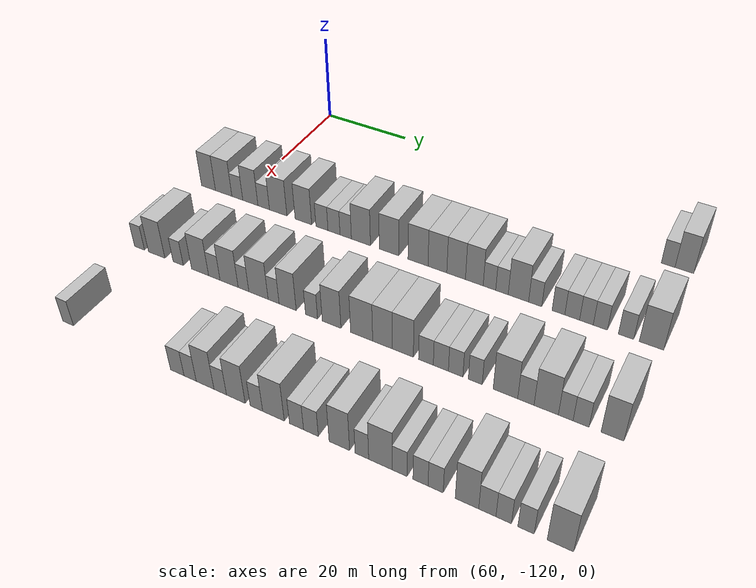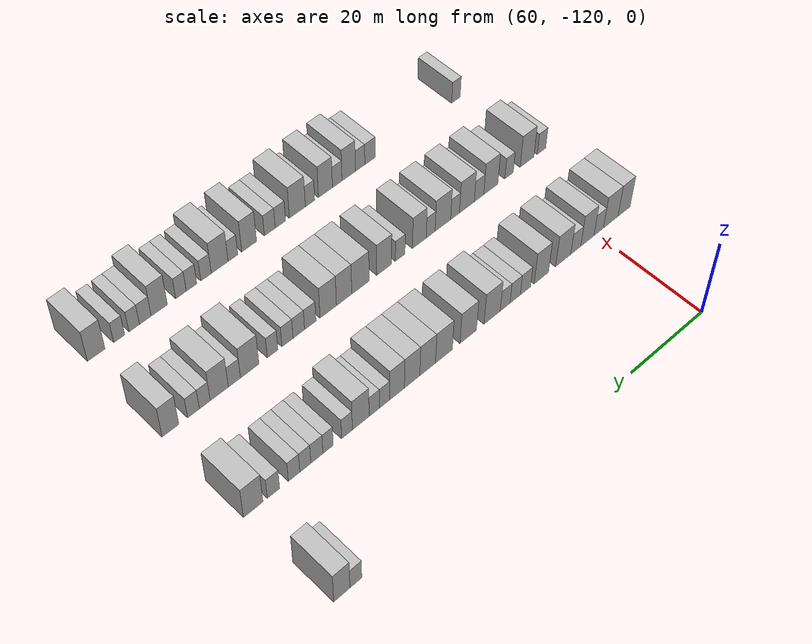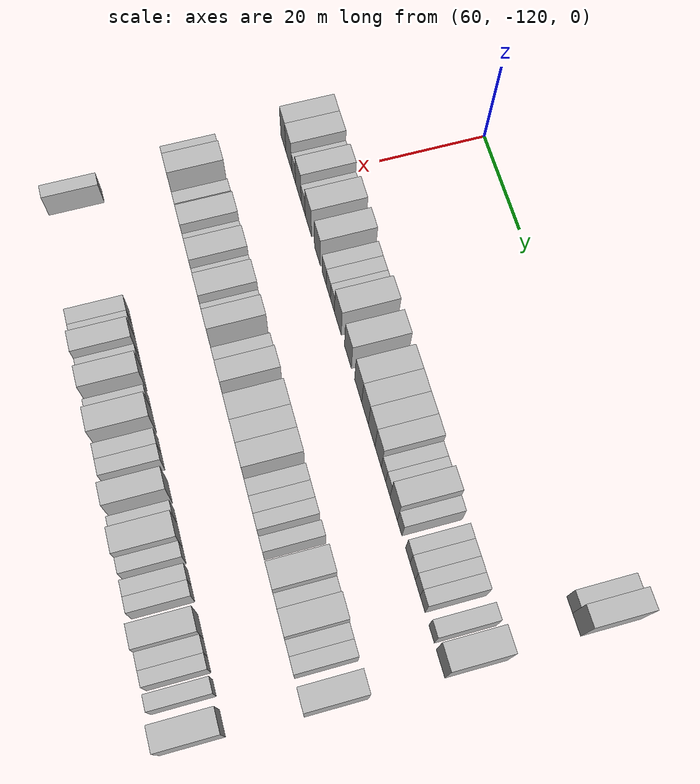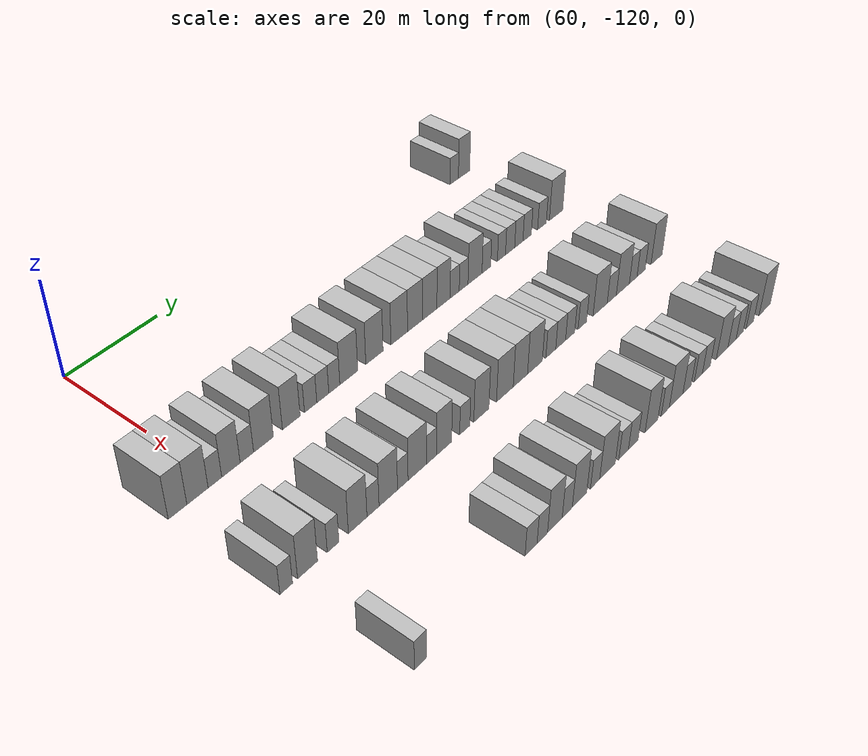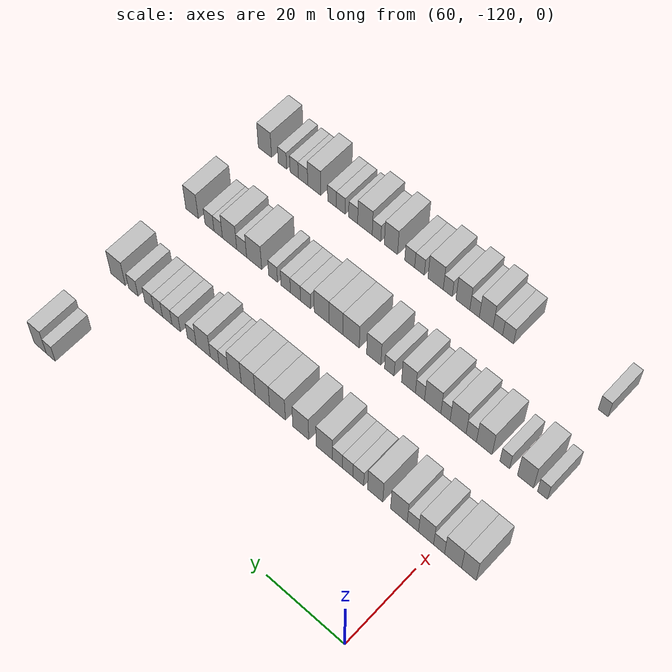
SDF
<sdf version="1.6">
 <world name="default">
  <model name="building_455">
   <static>1</static>
   <pose>69.0000 -35.5100 0 0.000000 0.000000 0.000000</pose>
   <link name="link">
    <pose>0 0 3.00 0 0 0</pose>
    <collision name="collision"><geometry><box><size>10.0000 2.6755 6.0000</size></box></geometry></collision>
    <visual name="visual">
     <cast_shadows>0</cast_shadows>
     <geometry><box><size>10.0000 2.6755 6.0000</size></box></geometry>
     <material>
      <script>
       <uri>model://HANNAS_wall/materials/scripts</uri>
       <uri>model://HANNAS_wall/materials/textures</uri>
       <name>vrc/HANNAS_wall</name>
      </script>
     </material>
    </visual>
   </link>
  </model>
  <model name="building_456">
   <static>1</static>
   <pose>69.0000 -32.3683 0 0.000000 0.000000 0.000000</pose>
   <link name="link">
    <pose>0 0 4.50 0 0 0</pose>
    <collision name="collision"><geometry><box><size>10.0000 3.6080 9.0000</size></box></geometry></collision>
    <visual name="visual">
     <cast_shadows>0</cast_shadows>
     <geometry><box><size>10.0000 3.6080 9.0000</size></box></geometry>
     <material>
      <script>
       <uri>model://HANNAS_wall/materials/scripts</uri>
       <uri>model://HANNAS_wall/materials/textures</uri>
       <name>vrc/HANNAS_wall</name>
      </script>
     </material>
    </visual>
   </link>
  </model>
  <model name="building_611">
   <static>1</static>
   <pose>91.0000 -128.0939 0 0.000000 0.000000 0.000000</pose>
   <link name="link">
    <pose>0 0 4.50 0 0 0</pose>
    <collision name="collision"><geometry><box><size>10.0000 3.6409 9.0000</size></box></geometry></collision>
    <visual name="visual">
     <cast_shadows>0</cast_shadows>
     <geometry><box><size>10.0000 3.6409 9.0000</size></box></geometry>
     <material>
      <script>
       <uri>model://HANNAS_wall/materials/scripts</uri>
       <uri>model://HANNAS_wall/materials/textures</uri>
       <name>vrc/HANNAS_wall</name>
      </script>
     </material>
    </visual>
   </link>
  </model>
  <model name="building_612">
   <static>1</static>
   <pose>91.0000 -124.1484 0 0.000000 0.000000 0.000000</pose>
   <link name="link">
    <pose>0 0 4.50 0 0 0</pose>
    <collision name="collision"><geometry><box><size>10.0000 4.2502 9.0000</size></box></geometry></collision>
    <visual name="visual">
     <cast_shadows>0</cast_shadows>
     <geometry><box><size>10.0000 4.2502 9.0000</size></box></geometry>
     <material>
      <script>
       <uri>model://HANNAS_wall/materials/scripts</uri>
       <uri>model://HANNAS_wall/materials/textures</uri>
       <name>vrc/HANNAS_wall</name>
      </script>
     </material>
    </visual>
   </link>
  </model>
  <model name="building_613">
   <static>1</static>
   <pose>91.0000 -120.6367 0 0.000000 0.000000 0.000000</pose>
   <link name="link">
    <pose>0 0 3.00 0 0 0</pose>
    <collision name="collision"><geometry><box><size>10.0000 2.7732 6.0000</size></box></geometry></collision>
    <visual name="visual">
     <cast_shadows>0</cast_shadows>
     <geometry><box><size>10.0000 2.7732 6.0000</size></box></geometry>
     <material>
      <script>
       <uri>model://HANNAS_wall/materials/scripts</uri>
       <uri>model://HANNAS_wall/materials/textures</uri>
       <name>vrc/HANNAS_wall</name>
      </script>
     </material>
    </visual>
   </link>
  </model>
  <model name="building_614">
   <static>1</static>
   <pose>91.0000 -117.3344 0 0.000000 0.000000 0.000000</pose>
   <link name="link">
    <pose>0 0 4.50 0 0 0</pose>
    <collision name="collision"><geometry><box><size>10.0000 3.8313 9.0000</size></box></geometry></collision>
    <visual name="visual">
     <cast_shadows>0</cast_shadows>
     <geometry><box><size>10.0000 3.8313 9.0000</size></box></geometry>
     <material>
      <script>
       <uri>model://HANNAS_wall/materials/scripts</uri>
       <uri>model://HANNAS_wall/materials/textures</uri>
       <name>vrc/HANNAS_wall</name>
      </script>
     </material>
    </visual>
   </link>
  </model>
  <model name="building_615">
   <static>1</static>
   <pose>91.0000 -113.9840 0 0.000000 0.000000 0.000000</pose>
   <link name="link">
    <pose>0 0 3.00 0 0 0</pose>
    <collision name="collision"><geometry><box><size>10.0000 2.8696 6.0000</size></box></geometry></collision>
    <visual name="visual">
     <cast_shadows>0</cast_shadows>
     <geometry><box><size>10.0000 2.8696 6.0000</size></box></geometry>
     <material>
      <script>
       <uri>model://HANNAS_wall/materials/scripts</uri>
       <uri>model://HANNAS_wall/materials/textures</uri>
       <name>vrc/HANNAS_wall</name>
      </script>
     </material>
    </visual>
   </link>
  </model>
  <model name="building_616">
   <static>1</static>
   <pose>91.0000 -110.4064 0 0.000000 0.000000 0.000000</pose>
   <link name="link">
    <pose>0 0 4.50 0 0 0</pose>
    <collision name="collision"><geometry><box><size>10.0000 4.2856 9.0000</size></box></geometry></collision>
    <visual name="visual">
     <cast_shadows>0</cast_shadows>
     <geometry><box><size>10.0000 4.2856 9.0000</size></box></geometry>
     <material>
      <script>
       <uri>model://HANNAS_wall/materials/scripts</uri>
       <uri>model://HANNAS_wall/materials/textures</uri>
       <name>vrc/HANNAS_wall</name>
      </script>
     </material>
    </visual>
   </link>
  </model>
  <model name="building_617">
   <static>1</static>
   <pose>91.0000 -104.2760 0 0.000000 0.000000 0.000000</pose>
   <link name="link">
    <pose>0 0 4.50 0 0 0</pose>
    <collision name="collision"><geometry><box><size>10.0000 3.9752 9.0000</size></box></geometry></collision>
    <visual name="visual">
     <cast_shadows>0</cast_shadows>
     <geometry><box><size>10.0000 3.9752 9.0000</size></box></geometry>
     <material>
      <script>
       <uri>model://HANNAS_wall/materials/scripts</uri>
       <uri>model://HANNAS_wall/materials/textures</uri>
       <name>vrc/HANNAS_wall</name>
      </script>
     </material>
    </visual>
   </link>
  </model>
  <model name="building_618">
   <static>1</static>
   <pose>91.0000 -99.8655 0 0.000000 0.000000 0.000000</pose>
   <link name="link">
    <pose>0 0 3.00 0 0 0</pose>
    <collision name="collision"><geometry><box><size>10.0000 2.8457 6.0000</size></box></geometry></collision>
    <visual name="visual">
     <cast_shadows>0</cast_shadows>
     <geometry><box><size>10.0000 2.8457 6.0000</size></box></geometry>
     <material>
      <script>
       <uri>model://HANNAS_wall/materials/scripts</uri>
       <uri>model://HANNAS_wall/materials/textures</uri>
       <name>vrc/HANNAS_wall</name>
      </script>
     </material>
    </visual>
   </link>
  </model>
  <model name="building_619">
   <static>1</static>
   <pose>91.0000 -97.0389 0 0.000000 0.000000 0.000000</pose>
   <link name="link">
    <pose>0 0 3.00 0 0 0</pose>
    <collision name="collision"><geometry><box><size>10.0000 2.8075 6.0000</size></box></geometry></collision>
    <visual name="visual">
     <cast_shadows>0</cast_shadows>
     <geometry><box><size>10.0000 2.8075 6.0000</size></box></geometry>
     <material>
      <script>
       <uri>model://HANNAS_wall/materials/scripts</uri>
       <uri>model://HANNAS_wall/materials/textures</uri>
       <name>vrc/HANNAS_wall</name>
      </script>
     </material>
    </visual>
   </link>
  </model>
  <model name="building_620">
   <static>1</static>
   <pose>91.0000 -94.3186 0 0.000000 0.000000 0.000000</pose>
   <link name="link">
    <pose>0 0 3.00 0 0 0</pose>
    <collision name="collision"><geometry><box><size>10.0000 2.6333 6.0000</size></box></geometry></collision>
    <visual name="visual">
     <cast_shadows>0</cast_shadows>
     <geometry><box><size>10.0000 2.6333 6.0000</size></box></geometry>
     <material>
      <script>
       <uri>model://HANNAS_wall/materials/scripts</uri>
       <uri>model://HANNAS_wall/materials/textures</uri>
       <name>vrc/HANNAS_wall</name>
      </script>
     </material>
    </visual>
   </link>
  </model>
  <model name="building_621">
   <static>1</static>
   <pose>91.0000 -90.8335 0 0.000000 0.000000 0.000000</pose>
   <link name="link">
    <pose>0 0 4.50 0 0 0</pose>
    <collision name="collision"><geometry><box><size>10.0000 4.3370 9.0000</size></box></geometry></collision>
    <visual name="visual">
     <cast_shadows>0</cast_shadows>
     <geometry><box><size>10.0000 4.3370 9.0000</size></box></geometry>
     <material>
      <script>
       <uri>model://HANNAS_wall/materials/scripts</uri>
       <uri>model://HANNAS_wall/materials/textures</uri>
       <name>vrc/HANNAS_wall</name>
      </script>
     </material>
    </visual>
   </link>
  </model>
  <model name="building_622">
   <static>1</static>
   <pose>91.0000 -84.4965 0 0.000000 0.000000 0.000000</pose>
   <link name="link">
    <pose>0 0 4.50 0 0 0</pose>
    <collision name="collision"><geometry><box><size>10.0000 4.3370 9.0000</size></box></geometry></collision>
    <visual name="visual">
     <cast_shadows>0</cast_shadows>
     <geometry><box><size>10.0000 4.3370 9.0000</size></box></geometry>
     <material>
      <script>
       <uri>model://HANNAS_wall/materials/scripts</uri>
       <uri>model://HANNAS_wall/materials/textures</uri>
       <name>vrc/HANNAS_wall</name>
      </script>
     </material>
    </visual>
   </link>
  </model>
  <model name="building_623">
   <static>1</static>
   <pose>91.0000 -78.1576 0 0.000000 0.000000 0.000000</pose>
   <link name="link">
    <pose>0 0 4.50 0 0 0</pose>
    <collision name="collision"><geometry><box><size>10.0000 4.3409 9.0000</size></box></geometry></collision>
    <visual name="visual">
     <cast_shadows>0</cast_shadows>
     <geometry><box><size>10.0000 4.3409 9.0000</size></box></geometry>
     <material>
      <script>
       <uri>model://HANNAS_wall/materials/scripts</uri>
       <uri>model://HANNAS_wall/materials/textures</uri>
       <name>vrc/HANNAS_wall</name>
      </script>
     </material>
    </visual>
   </link>
  </model>
  <model name="building_624">
   <static>1</static>
   <pose>91.0000 -73.9872 0 0.000000 0.000000 0.000000</pose>
   <link name="link">
    <pose>0 0 4.50 0 0 0</pose>
    <collision name="collision"><geometry><box><size>10.0000 3.9998 9.0000</size></box></geometry></collision>
    <visual name="visual">
     <cast_shadows>0</cast_shadows>
     <geometry><box><size>10.0000 3.9998 9.0000</size></box></geometry>
     <material>
      <script>
       <uri>model://HANNAS_wall/materials/scripts</uri>
       <uri>model://HANNAS_wall/materials/textures</uri>
       <name>vrc/HANNAS_wall</name>
      </script>
     </material>
    </visual>
   </link>
  </model>
  <model name="building_625">
   <static>1</static>
   <pose>91.0000 -70.0371 0 0.000000 0.000000 0.000000</pose>
   <link name="link">
    <pose>0 0 4.50 0 0 0</pose>
    <collision name="collision"><geometry><box><size>10.0000 3.9005 9.0000</size></box></geometry></collision>
    <visual name="visual">
     <cast_shadows>0</cast_shadows>
     <geometry><box><size>10.0000 3.9005 9.0000</size></box></geometry>
     <material>
      <script>
       <uri>model://HANNAS_wall/materials/scripts</uri>
       <uri>model://HANNAS_wall/materials/textures</uri>
       <name>vrc/HANNAS_wall</name>
      </script>
     </material>
    </visual>
   </link>
  </model>
  <model name="building_626">
   <static>1</static>
   <pose>91.0000 -66.2561 0 0.000000 0.000000 0.000000</pose>
   <link name="link">
    <pose>0 0 4.50 0 0 0</pose>
    <collision name="collision"><geometry><box><size>10.0000 3.6615 9.0000</size></box></geometry></collision>
    <visual name="visual">
     <cast_shadows>0</cast_shadows>
     <geometry><box><size>10.0000 3.6615 9.0000</size></box></geometry>
     <material>
      <script>
       <uri>model://HANNAS_wall/materials/scripts</uri>
       <uri>model://HANNAS_wall/materials/textures</uri>
       <name>vrc/HANNAS_wall</name>
      </script>
     </material>
    </visual>
   </link>
  </model>
  <model name="building_627">
   <static>1</static>
   <pose>91.0000 -63.1468 0 0.000000 0.000000 0.000000</pose>
   <link name="link">
    <pose>0 0 3.00 0 0 0</pose>
    <collision name="collision"><geometry><box><size>10.0000 2.5570 6.0000</size></box></geometry></collision>
    <visual name="visual">
     <cast_shadows>0</cast_shadows>
     <geometry><box><size>10.0000 2.5570 6.0000</size></box></geometry>
     <material>
      <script>
       <uri>model://HANNAS_wall/materials/scripts</uri>
       <uri>model://HANNAS_wall/materials/textures</uri>
       <name>vrc/HANNAS_wall</name>
      </script>
     </material>
    </visual>
   </link>
  </model>
  <model name="building_628">
   <static>1</static>
   <pose>91.0000 -60.6118 0 0.000000 0.000000 0.000000</pose>
   <link name="link">
    <pose>0 0 3.00 0 0 0</pose>
    <collision name="collision"><geometry><box><size>10.0000 2.5129 6.0000</size></box></geometry></collision>
    <visual name="visual">
     <cast_shadows>0</cast_shadows>
     <geometry><box><size>10.0000 2.5129 6.0000</size></box></geometry>
     <material>
      <script>
       <uri>model://HANNAS_wall/materials/scripts</uri>
       <uri>model://HANNAS_wall/materials/textures</uri>
       <name>vrc/HANNAS_wall</name>
      </script>
     </material>
    </visual>
   </link>
  </model>
  <model name="building_629">
   <static>1</static>
   <pose>91.0000 -57.3261 0 0.000000 0.000000 0.000000</pose>
   <link name="link">
    <pose>0 0 4.50 0 0 0</pose>
    <collision name="collision"><geometry><box><size>10.0000 4.0585 9.0000</size></box></geometry></collision>
    <visual name="visual">
     <cast_shadows>0</cast_shadows>
     <geometry><box><size>10.0000 4.0585 9.0000</size></box></geometry>
     <material>
      <script>
       <uri>model://HANNAS_wall/materials/scripts</uri>
       <uri>model://HANNAS_wall/materials/textures</uri>
       <name>vrc/HANNAS_wall</name>
      </script>
     </material>
    </visual>
   </link>
  </model>
  <model name="building_630">
   <static>1</static>
   <pose>91.0000 -54.0108 0 0.000000 0.000000 0.000000</pose>
   <link name="link">
    <pose>0 0 3.00 0 0 0</pose>
    <collision name="collision"><geometry><box><size>10.0000 2.5720 6.0000</size></box></geometry></collision>
    <visual name="visual">
     <cast_shadows>0</cast_shadows>
     <geometry><box><size>10.0000 2.5720 6.0000</size></box></geometry>
     <material>
      <script>
       <uri>model://HANNAS_wall/materials/scripts</uri>
       <uri>model://HANNAS_wall/materials/textures</uri>
       <name>vrc/HANNAS_wall</name>
      </script>
     </material>
    </visual>
   </link>
  </model>
  <model name="building_631">
   <static>1</static>
   <pose>91.0000 -49.4998 0 0.000000 0.000000 0.000000</pose>
   <link name="link">
    <pose>0 0 3.00 0 0 0</pose>
    <collision name="collision"><geometry><box><size>10.0000 2.4500 6.0000</size></box></geometry></collision>
    <visual name="visual">
     <cast_shadows>0</cast_shadows>
     <geometry><box><size>10.0000 2.4500 6.0000</size></box></geometry>
     <material>
      <script>
       <uri>model://HANNAS_wall/materials/scripts</uri>
       <uri>model://HANNAS_wall/materials/textures</uri>
       <name>vrc/HANNAS_wall</name>
      </script>
     </material>
    </visual>
   </link>
  </model>
  <model name="building_632">
   <static>1</static>
   <pose>91.0000 -46.8689 0 0.000000 0.000000 0.000000</pose>
   <link name="link">
    <pose>0 0 3.00 0 0 0</pose>
    <collision name="collision"><geometry><box><size>10.0000 2.8118 6.0000</size></box></geometry></collision>
    <visual name="visual">
     <cast_shadows>0</cast_shadows>
     <geometry><box><size>10.0000 2.8118 6.0000</size></box></geometry>
     <material>
      <script>
       <uri>model://HANNAS_wall/materials/scripts</uri>
       <uri>model://HANNAS_wall/materials/textures</uri>
       <name>vrc/HANNAS_wall</name>
      </script>
     </material>
    </visual>
   </link>
  </model>
  <model name="building_633">
   <static>1</static>
   <pose>91.0000 -44.1807 0 0.000000 0.000000 0.000000</pose>
   <link name="link">
    <pose>0 0 3.00 0 0 0</pose>
    <collision name="collision"><geometry><box><size>10.0000 2.5646 6.0000</size></box></geometry></collision>
    <visual name="visual">
     <cast_shadows>0</cast_shadows>
     <geometry><box><size>10.0000 2.5646 6.0000</size></box></geometry>
     <material>
      <script>
       <uri>model://HANNAS_wall/materials/scripts</uri>
       <uri>model://HANNAS_wall/materials/textures</uri>
       <name>vrc/HANNAS_wall</name>
      </script>
     </material>
    </visual>
   </link>
  </model>
  <model name="building_634">
   <static>1</static>
   <pose>91.0000 -41.5768 0 0.000000 0.000000 0.000000</pose>
   <link name="link">
    <pose>0 0 3.00 0 0 0</pose>
    <collision name="collision"><geometry><box><size>10.0000 2.6433 6.0000</size></box></geometry></collision>
    <visual name="visual">
     <cast_shadows>0</cast_shadows>
     <geometry><box><size>10.0000 2.6433 6.0000</size></box></geometry>
     <material>
      <script>
       <uri>model://HANNAS_wall/materials/scripts</uri>
       <uri>model://HANNAS_wall/materials/textures</uri>
       <name>vrc/HANNAS_wall</name>
      </script>
     </material>
    </visual>
   </link>
  </model>
  <model name="building_635">
   <static>1</static>
   <pose>91.0000 -36.8577 0 0.000000 0.000000 0.000000</pose>
   <link name="link">
    <pose>0 0 3.00 0 0 0</pose>
    <collision name="collision"><geometry><box><size>10.0000 2.7949 6.0000</size></box></geometry></collision>
    <visual name="visual">
     <cast_shadows>0</cast_shadows>
     <geometry><box><size>10.0000 2.7949 6.0000</size></box></geometry>
     <material>
      <script>
       <uri>model://HANNAS_wall/materials/scripts</uri>
       <uri>model://HANNAS_wall/materials/textures</uri>
       <name>vrc/HANNAS_wall</name>
      </script>
     </material>
    </visual>
   </link>
  </model>
  <model name="building_636">
   <static>1</static>
   <pose>91.0000 -32.2760 0 0.000000 0.000000 0.000000</pose>
   <link name="link">
    <pose>0 0 4.50 0 0 0</pose>
    <collision name="collision"><geometry><box><size>10.0000 4.3685 9.0000</size></box></geometry></collision>
    <visual name="visual">
     <cast_shadows>0</cast_shadows>
     <geometry><box><size>10.0000 4.3685 9.0000</size></box></geometry>
     <material>
      <script>
       <uri>model://HANNAS_wall/materials/scripts</uri>
       <uri>model://HANNAS_wall/materials/textures</uri>
       <name>vrc/HANNAS_wall</name>
      </script>
     </material>
    </visual>
   </link>
  </model>
  <model name="building_800">
   <static>1</static>
   <pose>113.0000 -128.1804 0 0.000000 0.000000 0.000000</pose>
   <link name="link">
    <pose>0 0 3.00 0 0 0</pose>
    <collision name="collision"><geometry><box><size>10.0000 2.4949 6.0000</size></box></geometry></collision>
    <visual name="visual">
     <cast_shadows>0</cast_shadows>
     <geometry><box><size>10.0000 2.4949 6.0000</size></box></geometry>
     <material>
      <script>
       <uri>model://HANNAS_wall/materials/scripts</uri>
       <uri>model://HANNAS_wall/materials/textures</uri>
       <name>vrc/HANNAS_wall</name>
      </script>
     </material>
    </visual>
   </link>
  </model>
  <model name="building_801">
   <static>1</static>
   <pose>113.0000 -123.9115 0 0.000000 0.000000 0.000000</pose>
   <link name="link">
    <pose>0 0 4.50 0 0 0</pose>
    <collision name="collision"><geometry><box><size>10.0000 4.0429 9.0000</size></box></geometry></collision>
    <visual name="visual">
     <cast_shadows>0</cast_shadows>
     <geometry><box><size>10.0000 4.0429 9.0000</size></box></geometry>
     <material>
      <script>
       <uri>model://HANNAS_wall/materials/scripts</uri>
       <uri>model://HANNAS_wall/materials/textures</uri>
       <name>vrc/HANNAS_wall</name>
      </script>
     </material>
    </visual>
   </link>
  </model>
  <model name="building_802">
   <static>1</static>
   <pose>113.0000 -118.6640 0 0.000000 0.000000 0.000000</pose>
   <link name="link">
    <pose>0 0 3.00 0 0 0</pose>
    <collision name="collision"><geometry><box><size>10.0000 2.4520 6.0000</size></box></geometry></collision>
    <visual name="visual">
     <cast_shadows>0</cast_shadows>
     <geometry><box><size>10.0000 2.4520 6.0000</size></box></geometry>
     <material>
      <script>
       <uri>model://HANNAS_wall/materials/scripts</uri>
       <uri>model://HANNAS_wall/materials/textures</uri>
       <name>vrc/HANNAS_wall</name>
      </script>
     </material>
    </visual>
   </link>
  </model>
  <model name="building_803">
   <static>1</static>
   <pose>113.0000 -113.4233 0 0.000000 0.000000 0.000000</pose>
   <link name="link">
    <pose>0 0 4.50 0 0 0</pose>
    <collision name="collision"><geometry><box><size>10.0000 4.0296 9.0000</size></box></geometry></collision>
    <visual name="visual">
     <cast_shadows>0</cast_shadows>
     <geometry><box><size>10.0000 4.0296 9.0000</size></box></geometry>
     <material>
      <script>
       <uri>model://HANNAS_wall/materials/scripts</uri>
       <uri>model://HANNAS_wall/materials/textures</uri>
       <name>vrc/HANNAS_wall</name>
      </script>
     </material>
    </visual>
   </link>
  </model>
  <model name="building_804">
   <static>1</static>
   <pose>113.0000 -110.0746 0 0.000000 0.000000 0.000000</pose>
   <link name="link">
    <pose>0 0 3.00 0 0 0</pose>
    <collision name="collision"><geometry><box><size>10.0000 2.6677 6.0000</size></box></geometry></collision>
    <visual name="visual">
     <cast_shadows>0</cast_shadows>
     <geometry><box><size>10.0000 2.6677 6.0000</size></box></geometry>
     <material>
      <script>
       <uri>model://HANNAS_wall/materials/scripts</uri>
       <uri>model://HANNAS_wall/materials/textures</uri>
       <name>vrc/HANNAS_wall</name>
      </script>
     </material>
    </visual>
   </link>
  </model>
  <model name="building_805">
   <static>1</static>
   <pose>113.0000 -106.6572 0 0.000000 0.000000 0.000000</pose>
   <link name="link">
    <pose>0 0 4.50 0 0 0</pose>
    <collision name="collision"><geometry><box><size>10.0000 4.1670 9.0000</size></box></geometry></collision>
    <visual name="visual">
     <cast_shadows>0</cast_shadows>
     <geometry><box><size>10.0000 4.1670 9.0000</size></box></geometry>
     <material>
      <script>
       <uri>model://HANNAS_wall/materials/scripts</uri>
       <uri>model://HANNAS_wall/materials/textures</uri>
       <name>vrc/HANNAS_wall</name>
      </script>
     </material>
    </visual>
   </link>
  </model>
  <model name="building_806">
   <static>1</static>
   <pose>113.0000 -103.3581 0 0.000000 0.000000 0.000000</pose>
   <link name="link">
    <pose>0 0 3.00 0 0 0</pose>
    <collision name="collision"><geometry><box><size>10.0000 2.4312 6.0000</size></box></geometry></collision>
    <visual name="visual">
     <cast_shadows>0</cast_shadows>
     <geometry><box><size>10.0000 2.4312 6.0000</size></box></geometry>
     <material>
      <script>
       <uri>model://HANNAS_wall/materials/scripts</uri>
       <uri>model://HANNAS_wall/materials/textures</uri>
       <name>vrc/HANNAS_wall</name>
      </script>
     </material>
    </visual>
   </link>
  </model>
  <model name="building_807">
   <static>1</static>
   <pose>113.0000 -99.9877 0 0.000000 0.000000 0.000000</pose>
   <link name="link">
    <pose>0 0 4.50 0 0 0</pose>
    <collision name="collision"><geometry><box><size>10.0000 4.3096 9.0000</size></box></geometry></collision>
    <visual name="visual">
     <cast_shadows>0</cast_shadows>
     <geometry><box><size>10.0000 4.3096 9.0000</size></box></geometry>
     <material>
      <script>
       <uri>model://HANNAS_wall/materials/scripts</uri>
       <uri>model://HANNAS_wall/materials/textures</uri>
       <name>vrc/HANNAS_wall</name>
      </script>
     </material>
    </visual>
   </link>
  </model>
  <model name="building_808">
   <static>1</static>
   <pose>113.0000 -96.6199 0 0.000000 0.000000 0.000000</pose>
   <link name="link">
    <pose>0 0 3.00 0 0 0</pose>
    <collision name="collision"><geometry><box><size>10.0000 2.4259 6.0000</size></box></geometry></collision>
    <visual name="visual">
     <cast_shadows>0</cast_shadows>
     <geometry><box><size>10.0000 2.4259 6.0000</size></box></geometry>
     <material>
      <script>
       <uri>model://HANNAS_wall/materials/scripts</uri>
       <uri>model://HANNAS_wall/materials/textures</uri>
       <name>vrc/HANNAS_wall</name>
      </script>
     </material>
    </visual>
   </link>
  </model>
  <model name="building_809">
   <static>1</static>
   <pose>113.0000 -93.5460 0 0.000000 0.000000 0.000000</pose>
   <link name="link">
    <pose>0 0 4.50 0 0 0</pose>
    <collision name="collision"><geometry><box><size>10.0000 3.7219 9.0000</size></box></geometry></collision>
    <visual name="visual">
     <cast_shadows>0</cast_shadows>
     <geometry><box><size>10.0000 3.7219 9.0000</size></box></geometry>
     <material>
      <script>
       <uri>model://HANNAS_wall/materials/scripts</uri>
       <uri>model://HANNAS_wall/materials/textures</uri>
       <name>vrc/HANNAS_wall</name>
      </script>
     </material>
    </visual>
   </link>
  </model>
  <model name="building_810">
   <static>1</static>
   <pose>113.0000 -88.4015 0 0.000000 0.000000 0.000000</pose>
   <link name="link">
    <pose>0 0 3.00 0 0 0</pose>
    <collision name="collision"><geometry><box><size>10.0000 2.5671 6.0000</size></box></geometry></collision>
    <visual name="visual">
     <cast_shadows>0</cast_shadows>
     <geometry><box><size>10.0000 2.5671 6.0000</size></box></geometry>
     <material>
      <script>
       <uri>model://HANNAS_wall/materials/scripts</uri>
       <uri>model://HANNAS_wall/materials/textures</uri>
       <name>vrc/HANNAS_wall</name>
      </script>
     </material>
    </visual>
   </link>
  </model>
  <model name="building_811">
   <static>1</static>
   <pose>113.0000 -84.1696 0 0.000000 0.000000 0.000000</pose>
   <link name="link">
    <pose>0 0 4.50 0 0 0</pose>
    <collision name="collision"><geometry><box><size>10.0000 3.8967 9.0000</size></box></geometry></collision>
    <visual name="visual">
     <cast_shadows>0</cast_shadows>
     <geometry><box><size>10.0000 3.8967 9.0000</size></box></geometry>
     <material>
      <script>
       <uri>model://HANNAS_wall/materials/scripts</uri>
       <uri>model://HANNAS_wall/materials/textures</uri>
       <name>vrc/HANNAS_wall</name>
      </script>
     </material>
    </visual>
   </link>
  </model>
  <model name="building_812">
   <static>1</static>
   <pose>113.0000 -77.9778 0 0.000000 0.000000 0.000000</pose>
   <link name="link">
    <pose>0 0 4.50 0 0 0</pose>
    <collision name="collision"><geometry><box><size>10.0000 4.4869 9.0000</size></box></geometry></collision>
    <visual name="visual">
     <cast_shadows>0</cast_shadows>
     <geometry><box><size>10.0000 4.4869 9.0000</size></box></geometry>
     <material>
      <script>
       <uri>model://HANNAS_wall/materials/scripts</uri>
       <uri>model://HANNAS_wall/materials/textures</uri>
       <name>vrc/HANNAS_wall</name>
      </script>
     </material>
    </visual>
   </link>
  </model>
  <model name="building_813">
   <static>1</static>
   <pose>113.0000 -73.7765 0 0.000000 0.000000 0.000000</pose>
   <link name="link">
    <pose>0 0 4.50 0 0 0</pose>
    <collision name="collision"><geometry><box><size>10.0000 3.9157 9.0000</size></box></geometry></collision>
    <visual name="visual">
     <cast_shadows>0</cast_shadows>
     <geometry><box><size>10.0000 3.9157 9.0000</size></box></geometry>
     <material>
      <script>
       <uri>model://HANNAS_wall/materials/scripts</uri>
       <uri>model://HANNAS_wall/materials/textures</uri>
       <name>vrc/HANNAS_wall</name>
      </script>
     </material>
    </visual>
   </link>
  </model>
  <model name="building_814">
   <static>1</static>
   <pose>113.0000 -69.7469 0 0.000000 0.000000 0.000000</pose>
   <link name="link">
    <pose>0 0 4.50 0 0 0</pose>
    <collision name="collision"><geometry><box><size>10.0000 4.1435 9.0000</size></box></geometry></collision>
    <visual name="visual">
     <cast_shadows>0</cast_shadows>
     <geometry><box><size>10.0000 4.1435 9.0000</size></box></geometry>
     <material>
      <script>
       <uri>model://HANNAS_wall/materials/scripts</uri>
       <uri>model://HANNAS_wall/materials/textures</uri>
       <name>vrc/HANNAS_wall</name>
      </script>
     </material>
    </visual>
   </link>
  </model>
  <model name="building_815">
   <static>1</static>
   <pose>113.0000 -65.2521 0 0.000000 0.000000 0.000000</pose>
   <link name="link">
    <pose>0 0 3.00 0 0 0</pose>
    <collision name="collision"><geometry><box><size>10.0000 2.8461 6.0000</size></box></geometry></collision>
    <visual name="visual">
     <cast_shadows>0</cast_shadows>
     <geometry><box><size>10.0000 2.8461 6.0000</size></box></geometry>
     <material>
      <script>
       <uri>model://HANNAS_wall/materials/scripts</uri>
       <uri>model://HANNAS_wall/materials/textures</uri>
       <name>vrc/HANNAS_wall</name>
      </script>
     </material>
    </visual>
   </link>
  </model>
  <model name="building_816">
   <static>1</static>
   <pose>113.0000 -62.3999 0 0.000000 0.000000 0.000000</pose>
   <link name="link">
    <pose>0 0 3.00 0 0 0</pose>
    <collision name="collision"><geometry><box><size>10.0000 2.8583 6.0000</size></box></geometry></collision>
    <visual name="visual">
     <cast_shadows>0</cast_shadows>
     <geometry><box><size>10.0000 2.8583 6.0000</size></box></geometry>
     <material>
      <script>
       <uri>model://HANNAS_wall/materials/scripts</uri>
       <uri>model://HANNAS_wall/materials/textures</uri>
       <name>vrc/HANNAS_wall</name>
      </script>
     </material>
    </visual>
   </link>
  </model>
  <model name="building_817">
   <static>1</static>
   <pose>113.0000 -59.6123 0 0.000000 0.000000 0.000000</pose>
   <link name="link">
    <pose>0 0 3.00 0 0 0</pose>
    <collision name="collision"><geometry><box><size>10.0000 2.7169 6.0000</size></box></geometry></collision>
    <visual name="visual">
     <cast_shadows>0</cast_shadows>
     <geometry><box><size>10.0000 2.7169 6.0000</size></box></geometry>
     <material>
      <script>
       <uri>model://HANNAS_wall/materials/scripts</uri>
       <uri>model://HANNAS_wall/materials/textures</uri>
       <name>vrc/HANNAS_wall</name>
      </script>
     </material>
    </visual>
   </link>
  </model>
  <model name="building_818">
   <static>1</static>
   <pose>113.0000 -55.9726 0 0.000000 0.000000 0.000000</pose>
   <link name="link">
    <pose>0 0 3.00 0 0 0</pose>
    <collision name="collision"><geometry><box><size>10.0000 2.5624 6.0000</size></box></geometry></collision>
    <visual name="visual">
     <cast_shadows>0</cast_shadows>
     <geometry><box><size>10.0000 2.5624 6.0000</size></box></geometry>
     <material>
      <script>
       <uri>model://HANNAS_wall/materials/scripts</uri>
       <uri>model://HANNAS_wall/materials/textures</uri>
       <name>vrc/HANNAS_wall</name>
      </script>
     </material>
    </visual>
   </link>
  </model>
  <model name="building_819">
   <static>1</static>
   <pose>113.0000 -50.4887 0 0.000000 0.000000 0.000000</pose>
   <link name="link">
    <pose>0 0 4.50 0 0 0</pose>
    <collision name="collision"><geometry><box><size>10.0000 4.4054 9.0000</size></box></geometry></collision>
    <visual name="visual">
     <cast_shadows>0</cast_shadows>
     <geometry><box><size>10.0000 4.4054 9.0000</size></box></geometry>
     <material>
      <script>
       <uri>model://HANNAS_wall/materials/scripts</uri>
       <uri>model://HANNAS_wall/materials/textures</uri>
       <name>vrc/HANNAS_wall</name>
      </script>
     </material>
    </visual>
   </link>
  </model>
  <model name="building_820">
   <static>1</static>
   <pose>113.0000 -46.8437 0 0.000000 0.000000 0.000000</pose>
   <link name="link">
    <pose>0 0 3.00 0 0 0</pose>
    <collision name="collision"><geometry><box><size>10.0000 2.8846 6.0000</size></box></geometry></collision>
    <visual name="visual">
     <cast_shadows>0</cast_shadows>
     <geometry><box><size>10.0000 2.8846 6.0000</size></box></geometry>
     <material>
      <script>
       <uri>model://HANNAS_wall/materials/scripts</uri>
       <uri>model://HANNAS_wall/materials/textures</uri>
       <name>vrc/HANNAS_wall</name>
      </script>
     </material>
    </visual>
   </link>
  </model>
  <model name="building_821">
   <static>1</static>
   <pose>113.0000 -43.2892 0 0.000000 0.000000 0.000000</pose>
   <link name="link">
    <pose>0 0 4.50 0 0 0</pose>
    <collision name="collision"><geometry><box><size>10.0000 4.2245 9.0000</size></box></geometry></collision>
    <visual name="visual">
     <cast_shadows>0</cast_shadows>
     <geometry><box><size>10.0000 4.2245 9.0000</size></box></geometry>
     <material>
      <script>
       <uri>model://HANNAS_wall/materials/scripts</uri>
       <uri>model://HANNAS_wall/materials/textures</uri>
       <name>vrc/HANNAS_wall</name>
      </script>
     </material>
    </visual>
   </link>
  </model>
  <model name="building_822">
   <static>1</static>
   <pose>113.0000 -39.9214 0 0.000000 0.000000 0.000000</pose>
   <link name="link">
    <pose>0 0 3.00 0 0 0</pose>
    <collision name="collision"><geometry><box><size>10.0000 2.5112 6.0000</size></box></geometry></collision>
    <visual name="visual">
     <cast_shadows>0</cast_shadows>
     <geometry><box><size>10.0000 2.5112 6.0000</size></box></geometry>
     <material>
      <script>
       <uri>model://HANNAS_wall/materials/scripts</uri>
       <uri>model://HANNAS_wall/materials/textures</uri>
       <name>vrc/HANNAS_wall</name>
      </script>
     </material>
    </visual>
   </link>
  </model>
  <model name="building_823">
   <static>1</static>
   <pose>113.0000 -37.3169 0 0.000000 0.000000 0.000000</pose>
   <link name="link">
    <pose>0 0 3.00 0 0 0</pose>
    <collision name="collision"><geometry><box><size>10.0000 2.6978 6.0000</size></box></geometry></collision>
    <visual name="visual">
     <cast_shadows>0</cast_shadows>
     <geometry><box><size>10.0000 2.6978 6.0000</size></box></geometry>
     <material>
      <script>
       <uri>model://HANNAS_wall/materials/scripts</uri>
       <uri>model://HANNAS_wall/materials/textures</uri>
       <name>vrc/HANNAS_wall</name>
      </script>
     </material>
    </visual>
   </link>
  </model>
  <model name="building_824">
   <static>1</static>
   <pose>113.0000 -32.0832 0 0.000000 0.000000 0.000000</pose>
   <link name="link">
    <pose>0 0 4.50 0 0 0</pose>
    <collision name="collision"><geometry><box><size>10.0000 3.7695 9.0000</size></box></geometry></collision>
    <visual name="visual">
     <cast_shadows>0</cast_shadows>
     <geometry><box><size>10.0000 3.7695 9.0000</size></box></geometry>
     <material>
      <script>
       <uri>model://HANNAS_wall/materials/scripts</uri>
       <uri>model://HANNAS_wall/materials/textures</uri>
       <name>vrc/HANNAS_wall</name>
      </script>
     </material>
    </visual>
   </link>
  </model>
  <model name="building_992">
   <static>1</static>
   <pose>135.0000 -125.9061 0 0.000000 0.000000 0.000000</pose>
   <link name="link">
    <pose>0 0 3.00 0 0 0</pose>
    <collision name="collision"><geometry><box><size>10.0000 2.5025 6.0000</size></box></geometry></collision>
    <visual name="visual">
     <cast_shadows>0</cast_shadows>
     <geometry><box><size>10.0000 2.5025 6.0000</size></box></geometry>
     <material>
      <script>
       <uri>model://HANNAS_wall/materials/scripts</uri>
       <uri>model://HANNAS_wall/materials/textures</uri>
       <name>vrc/HANNAS_wall</name>
      </script>
     </material>
    </visual>
   </link>
  </model>
  <model name="building_993">
   <static>1</static>
   <pose>135.0000 -101.3300 0 0.000000 0.000000 0.000000</pose>
   <link name="link">
    <pose>0 0 3.00 0 0 0</pose>
    <collision name="collision"><geometry><box><size>10.0000 2.8833 6.0000</size></box></geometry></collision>
    <visual name="visual">
     <cast_shadows>0</cast_shadows>
     <geometry><box><size>10.0000 2.8833 6.0000</size></box></geometry>
     <material>
      <script>
       <uri>model://HANNAS_wall/materials/scripts</uri>
       <uri>model://HANNAS_wall/materials/textures</uri>
       <name>vrc/HANNAS_wall</name>
      </script>
     </material>
    </visual>
   </link>
  </model>
  <model name="building_994">
   <static>1</static>
   <pose>135.0000 -98.6032 0 0.000000 0.000000 0.000000</pose>
   <link name="link">
    <pose>0 0 3.00 0 0 0</pose>
    <collision name="collision"><geometry><box><size>10.0000 2.5703 6.0000</size></box></geometry></collision>
    <visual name="visual">
     <cast_shadows>0</cast_shadows>
     <geometry><box><size>10.0000 2.5703 6.0000</size></box></geometry>
     <material>
      <script>
       <uri>model://HANNAS_wall/materials/scripts</uri>
       <uri>model://HANNAS_wall/materials/textures</uri>
       <name>vrc/HANNAS_wall</name>
      </script>
     </material>
    </visual>
   </link>
  </model>
  <model name="building_995">
   <static>1</static>
   <pose>135.0000 -95.4774 0 0.000000 0.000000 0.000000</pose>
   <link name="link">
    <pose>0 0 4.50 0 0 0</pose>
    <collision name="collision"><geometry><box><size>10.0000 3.6814 9.0000</size></box></geometry></collision>
    <visual name="visual">
     <cast_shadows>0</cast_shadows>
     <geometry><box><size>10.0000 3.6814 9.0000</size></box></geometry>
     <material>
      <script>
       <uri>model://HANNAS_wall/materials/scripts</uri>
       <uri>model://HANNAS_wall/materials/textures</uri>
       <name>vrc/HANNAS_wall</name>
      </script>
     </material>
    </visual>
   </link>
  </model>
  <model name="building_996">
   <static>1</static>
   <pose>135.0000 -92.3592 0 0.000000 0.000000 0.000000</pose>
   <link name="link">
    <pose>0 0 3.00 0 0 0</pose>
    <collision name="collision"><geometry><box><size>10.0000 2.5549 6.0000</size></box></geometry></collision>
    <visual name="visual">
     <cast_shadows>0</cast_shadows>
     <geometry><box><size>10.0000 2.5549 6.0000</size></box></geometry>
     <material>
      <script>
       <uri>model://HANNAS_wall/materials/scripts</uri>
       <uri>model://HANNAS_wall/materials/textures</uri>
       <name>vrc/HANNAS_wall</name>
      </script>
     </material>
    </visual>
   </link>
  </model>
  <model name="building_997">
   <static>1</static>
   <pose>135.0000 -89.1998 0 0.000000 0.000000 0.000000</pose>
   <link name="link">
    <pose>0 0 4.50 0 0 0</pose>
    <collision name="collision"><geometry><box><size>10.0000 3.7640 9.0000</size></box></geometry></collision>
    <visual name="visual">
     <cast_shadows>0</cast_shadows>
     <geometry><box><size>10.0000 3.7640 9.0000</size></box></geometry>
     <material>
      <script>
       <uri>model://HANNAS_wall/materials/scripts</uri>
       <uri>model://HANNAS_wall/materials/textures</uri>
       <name>vrc/HANNAS_wall</name>
      </script>
     </material>
    </visual>
   </link>
  </model>
  <model name="building_998">
   <static>1</static>
   <pose>135.0000 -85.0858 0 0.000000 0.000000 0.000000</pose>
   <link name="link">
    <pose>0 0 3.00 0 0 0</pose>
    <collision name="collision"><geometry><box><size>10.0000 2.4639 6.0000</size></box></geometry></collision>
    <visual name="visual">
     <cast_shadows>0</cast_shadows>
     <geometry><box><size>10.0000 2.4639 6.0000</size></box></geometry>
     <material>
      <script>
       <uri>model://HANNAS_wall/materials/scripts</uri>
       <uri>model://HANNAS_wall/materials/textures</uri>
       <name>vrc/HANNAS_wall</name>
      </script>
     </material>
    </visual>
   </link>
  </model>
  <model name="building_999">
   <static>1</static>
   <pose>135.0000 -81.7494 0 0.000000 0.000000 0.000000</pose>
   <link name="link">
    <pose>0 0 4.50 0 0 0</pose>
    <collision name="collision"><geometry><box><size>10.0000 4.2089 9.0000</size></box></geometry></collision>
    <visual name="visual">
     <cast_shadows>0</cast_shadows>
     <geometry><box><size>10.0000 4.2089 9.0000</size></box></geometry>
     <material>
      <script>
       <uri>model://HANNAS_wall/materials/scripts</uri>
       <uri>model://HANNAS_wall/materials/textures</uri>
       <name>vrc/HANNAS_wall</name>
      </script>
     </material>
    </visual>
   </link>
  </model>
  <model name="building_1000">
   <static>1</static>
   <pose>135.0000 -77.3073 0 0.000000 0.000000 0.000000</pose>
   <link name="link">
    <pose>0 0 3.00 0 0 0</pose>
    <collision name="collision"><geometry><box><size>10.0000 2.6753 6.0000</size></box></geometry></collision>
    <visual name="visual">
     <cast_shadows>0</cast_shadows>
     <geometry><box><size>10.0000 2.6753 6.0000</size></box></geometry>
     <material>
      <script>
       <uri>model://HANNAS_wall/materials/scripts</uri>
       <uri>model://HANNAS_wall/materials/textures</uri>
       <name>vrc/HANNAS_wall</name>
      </script>
     </material>
    </visual>
   </link>
  </model>
  <model name="building_1001">
   <static>1</static>
   <pose>135.0000 -74.5821 0 0.000000 0.000000 0.000000</pose>
   <link name="link">
    <pose>0 0 3.00 0 0 0</pose>
    <collision name="collision"><geometry><box><size>10.0000 2.7751 6.0000</size></box></geometry></collision>
    <visual name="visual">
     <cast_shadows>0</cast_shadows>
     <geometry><box><size>10.0000 2.7751 6.0000</size></box></geometry>
     <material>
      <script>
       <uri>model://HANNAS_wall/materials/scripts</uri>
       <uri>model://HANNAS_wall/materials/textures</uri>
       <name>vrc/HANNAS_wall</name>
      </script>
     </material>
    </visual>
   </link>
  </model>
  <model name="building_1002">
   <static>1</static>
   <pose>135.0000 -69.3178 0 0.000000 0.000000 0.000000</pose>
   <link name="link">
    <pose>0 0 4.50 0 0 0</pose>
    <collision name="collision"><geometry><box><size>10.0000 3.7533 9.0000</size></box></geometry></collision>
    <visual name="visual">
     <cast_shadows>0</cast_shadows>
     <geometry><box><size>10.0000 3.7533 9.0000</size></box></geometry>
     <material>
      <script>
       <uri>model://HANNAS_wall/materials/scripts</uri>
       <uri>model://HANNAS_wall/materials/textures</uri>
       <name>vrc/HANNAS_wall</name>
      </script>
     </material>
    </visual>
   </link>
  </model>
  <model name="building_1003">
   <static>1</static>
   <pose>135.0000 -65.2280 0 0.000000 0.000000 0.000000</pose>
   <link name="link">
    <pose>0 0 3.00 0 0 0</pose>
    <collision name="collision"><geometry><box><size>10.0000 2.4264 6.0000</size></box></geometry></collision>
    <visual name="visual">
     <cast_shadows>0</cast_shadows>
     <geometry><box><size>10.0000 2.4264 6.0000</size></box></geometry>
     <material>
      <script>
       <uri>model://HANNAS_wall/materials/scripts</uri>
       <uri>model://HANNAS_wall/materials/textures</uri>
       <name>vrc/HANNAS_wall</name>
      </script>
     </material>
    </visual>
   </link>
  </model>
  <model name="building_1004">
   <static>1</static>
   <pose>135.0000 -61.9318 0 0.000000 0.000000 0.000000</pose>
   <link name="link">
    <pose>0 0 4.50 0 0 0</pose>
    <collision name="collision"><geometry><box><size>10.0000 4.1658 9.0000</size></box></geometry></collision>
    <visual name="visual">
     <cast_shadows>0</cast_shadows>
     <geometry><box><size>10.0000 4.1658 9.0000</size></box></geometry>
     <material>
      <script>
       <uri>model://HANNAS_wall/materials/scripts</uri>
       <uri>model://HANNAS_wall/materials/textures</uri>
       <name>vrc/HANNAS_wall</name>
      </script>
     </material>
    </visual>
   </link>
  </model>
  <model name="building_1005">
   <static>1</static>
   <pose>135.0000 -58.5636 0 0.000000 0.000000 0.000000</pose>
   <link name="link">
    <pose>0 0 3.00 0 0 0</pose>
    <collision name="collision"><geometry><box><size>10.0000 2.5707 6.0000</size></box></geometry></collision>
    <visual name="visual">
     <cast_shadows>0</cast_shadows>
     <geometry><box><size>10.0000 2.5707 6.0000</size></box></geometry>
     <material>
      <script>
       <uri>model://HANNAS_wall/materials/scripts</uri>
       <uri>model://HANNAS_wall/materials/textures</uri>
       <name>vrc/HANNAS_wall</name>
      </script>
     </material>
    </visual>
   </link>
  </model>
  <model name="building_1006">
   <static>1</static>
   <pose>135.0000 -54.9907 0 0.000000 0.000000 0.000000</pose>
   <link name="link">
    <pose>0 0 3.00 0 0 0</pose>
    <collision name="collision"><geometry><box><size>10.0000 2.5751 6.0000</size></box></geometry></collision>
    <visual name="visual">
     <cast_shadows>0</cast_shadows>
     <geometry><box><size>10.0000 2.5751 6.0000</size></box></geometry>
     <material>
      <script>
       <uri>model://HANNAS_wall/materials/scripts</uri>
       <uri>model://HANNAS_wall/materials/textures</uri>
       <name>vrc/HANNAS_wall</name>
      </script>
     </material>
    </visual>
   </link>
  </model>
  <model name="building_1007">
   <static>1</static>
   <pose>135.0000 -52.4331 0 0.000000 0.000000 0.000000</pose>
   <link name="link">
    <pose>0 0 3.00 0 0 0</pose>
    <collision name="collision"><geometry><box><size>10.0000 2.5401 6.0000</size></box></geometry></collision>
    <visual name="visual">
     <cast_shadows>0</cast_shadows>
     <geometry><box><size>10.0000 2.5401 6.0000</size></box></geometry>
     <material>
      <script>
       <uri>model://HANNAS_wall/materials/scripts</uri>
       <uri>model://HANNAS_wall/materials/textures</uri>
       <name>vrc/HANNAS_wall</name>
      </script>
     </material>
    </visual>
   </link>
  </model>
  <model name="building_1008">
   <static>1</static>
   <pose>135.0000 -47.2432 0 0.000000 0.000000 0.000000</pose>
   <link name="link">
    <pose>0 0 4.50 0 0 0</pose>
    <collision name="collision"><geometry><box><size>10.0000 3.8397 9.0000</size></box></geometry></collision>
    <visual name="visual">
     <cast_shadows>0</cast_shadows>
     <geometry><box><size>10.0000 3.8397 9.0000</size></box></geometry>
     <material>
      <script>
       <uri>model://HANNAS_wall/materials/scripts</uri>
       <uri>model://HANNAS_wall/materials/textures</uri>
       <name>vrc/HANNAS_wall</name>
      </script>
     </material>
    </visual>
   </link>
  </model>
  <model name="building_1009">
   <static>1</static>
   <pose>135.0000 -43.9367 0 0.000000 0.000000 0.000000</pose>
   <link name="link">
    <pose>0 0 3.00 0 0 0</pose>
    <collision name="collision"><geometry><box><size>10.0000 2.7733 6.0000</size></box></geometry></collision>
    <visual name="visual">
     <cast_shadows>0</cast_shadows>
     <geometry><box><size>10.0000 2.7733 6.0000</size></box></geometry>
     <material>
      <script>
       <uri>model://HANNAS_wall/materials/scripts</uri>
       <uri>model://HANNAS_wall/materials/textures</uri>
       <name>vrc/HANNAS_wall</name>
      </script>
     </material>
    </visual>
   </link>
  </model>
  <model name="building_1010">
   <static>1</static>
   <pose>135.0000 -41.3239 0 0.000000 0.000000 0.000000</pose>
   <link name="link">
    <pose>0 0 3.00 0 0 0</pose>
    <collision name="collision"><geometry><box><size>10.0000 2.4523 6.0000</size></box></geometry></collision>
    <visual name="visual">
     <cast_shadows>0</cast_shadows>
     <geometry><box><size>10.0000 2.4523 6.0000</size></box></geometry>
     <material>
      <script>
       <uri>model://HANNAS_wall/materials/scripts</uri>
       <uri>model://HANNAS_wall/materials/textures</uri>
       <name>vrc/HANNAS_wall</name>
      </script>
     </material>
    </visual>
   </link>
  </model>
  <model name="building_1011">
   <static>1</static>
   <pose>135.0000 -37.8255 0 0.000000 0.000000 0.000000</pose>
   <link name="link">
    <pose>0 0 3.00 0 0 0</pose>
    <collision name="collision"><geometry><box><size>10.0000 2.5446 6.0000</size></box></geometry></collision>
    <visual name="visual">
     <cast_shadows>0</cast_shadows>
     <geometry><box><size>10.0000 2.5446 6.0000</size></box></geometry>
     <material>
      <script>
       <uri>model://HANNAS_wall/materials/scripts</uri>
       <uri>model://HANNAS_wall/materials/textures</uri>
       <name>vrc/HANNAS_wall</name>
      </script>
     </material>
    </visual>
   </link>
  </model>
  <model name="building_1012">
   <static>1</static>
   <pose>135.0000 -32.5477 0 0.000000 0.000000 0.000000</pose>
   <link name="link">
    <pose>0 0 4.50 0 0 0</pose>
    <collision name="collision"><geometry><box><size>10.0000 4.0110 9.0000</size></box></geometry></collision>
    <visual name="visual">
     <cast_shadows>0</cast_shadows>
     <geometry><box><size>10.0000 4.0110 9.0000</size></box></geometry>
     <material>
      <script>
       <uri>model://HANNAS_wall/materials/scripts</uri>
       <uri>model://HANNAS_wall/materials/textures</uri>
       <name>vrc/HANNAS_wall</name>
      </script>
     </material>
    </visual>
   </link>
  </model>
 </world>
</sdf>
